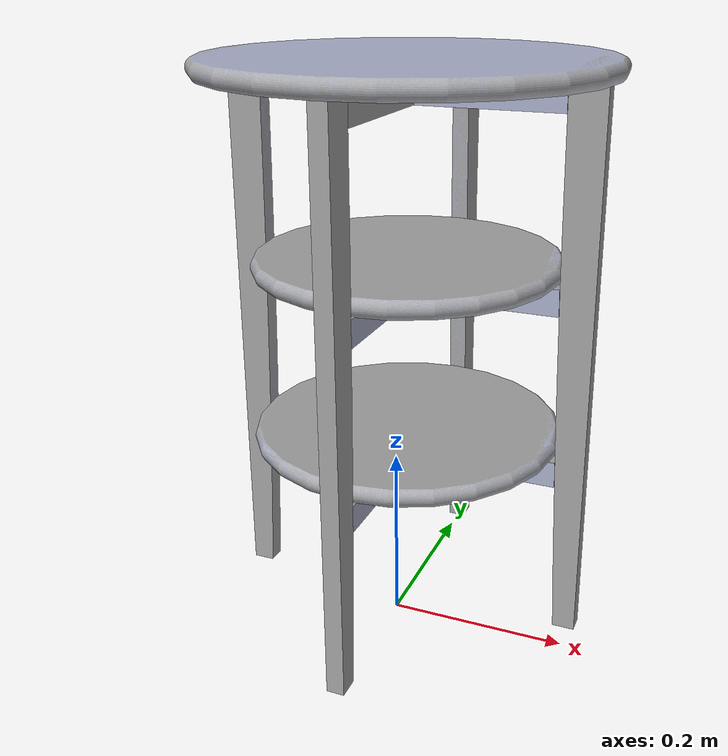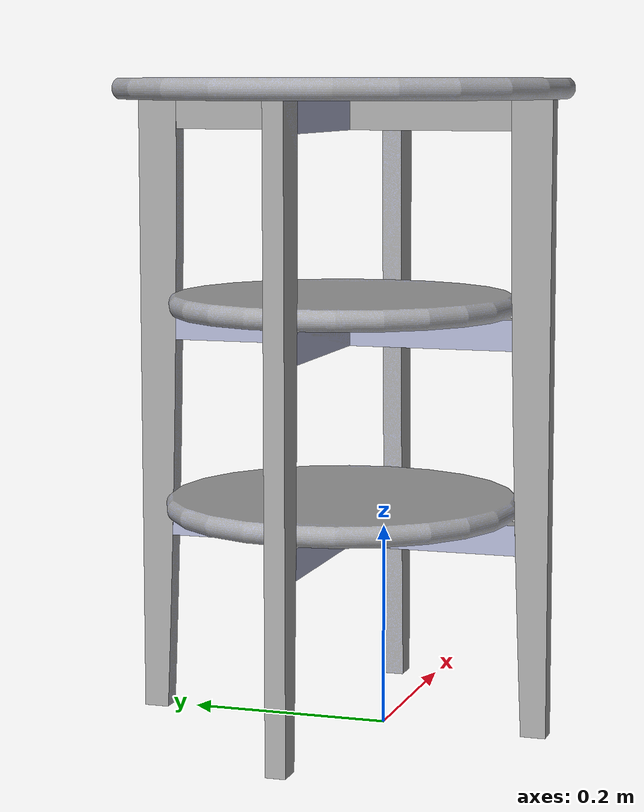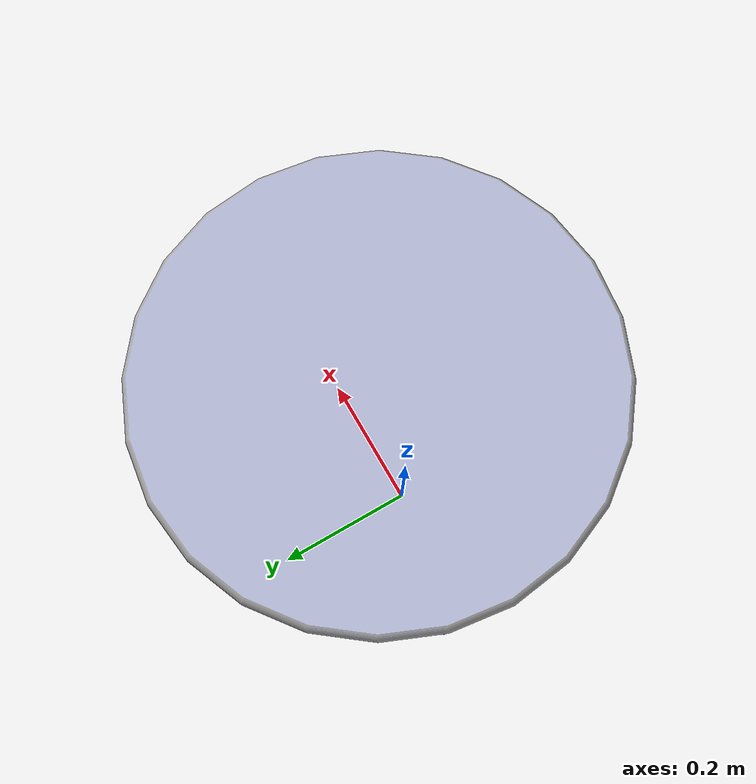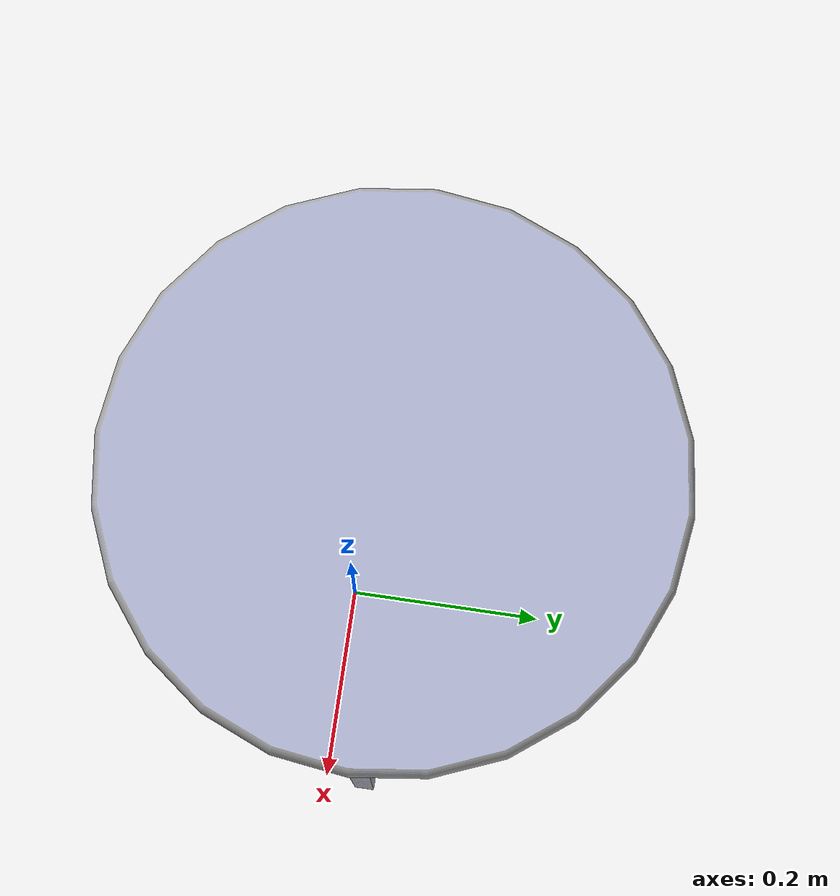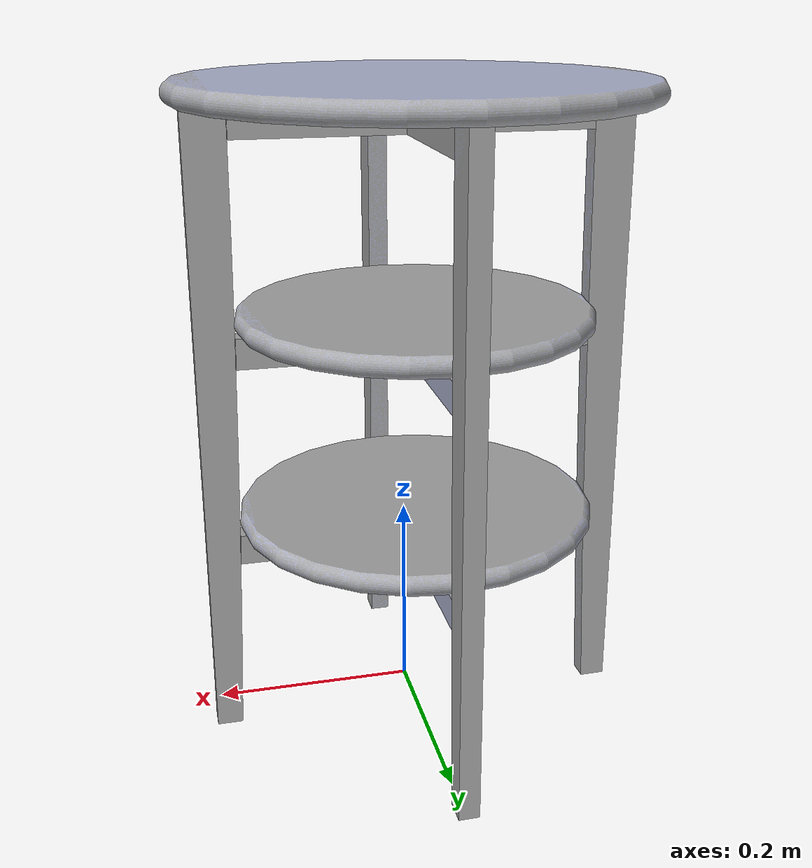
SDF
<?xml version='1.0'?>
<sdf version='1.6'>
  <model name='side_table_1'>
    <link name='link_1'>
      <pose frame=''>0.007786 -0.167928 0 0 -0 0</pose>
         <visual name='visual'>
        <pose frame=''>0 0 0 0 -0 0</pose>
        <geometry>
          <mesh>
            <uri>model://side_table_1/meshes/middle.dae</uri>
            <scale>1 1 1</scale>
          </mesh>
        </geometry>
         <material>
          <script>
            <uri>model://side_table_1/materials/scripts</uri>
            <uri>model://side_table_1/materials/textures</uri>
            <name>side_table_1</name>
          </script>
        </material>
        <cast_shadows>1</cast_shadows>
        <transparency>0</transparency>
      </visual>
      <collision name='collision'>
        <laser_retro>0</laser_retro>
        <max_contacts>10</max_contacts>
        <pose frame=''>0 0 0 0 -0 0</pose>
        <geometry>
          <mesh>
            <uri>model://side_table_1/meshes/middle.dae</uri>
            <scale>1 1 1</scale>
          </mesh>
        </geometry>
       </collision>
    </link>
    <link name='link_2'>
      <pose frame=''>0.007887 -0.167821 0 0 -0 0</pose>
        <visual name='visual'>
        <pose frame=''>0 0 0 0 -0 0</pose>
        <geometry>
          <mesh>
            <uri>model://side_table_1/meshes/leg.dae</uri>
            <scale>1 1 1</scale>
          </mesh>
        </geometry>
               <material>
          <script>
            <uri>model://side_table_1/materials/scripts</uri>
            <uri>model://side_table_1/materials/textures</uri>
            <name>side_table_1</name>
          </script>
        </material>
        <cast_shadows>1</cast_shadows>
        <transparency>0</transparency>
      </visual>
      <collision name='collision'>
        <laser_retro>0</laser_retro>
        <max_contacts>10</max_contacts>
        <pose frame=''>0 0 0 0 -0 0</pose>
        <geometry>
          <mesh>
            <uri>model://side_table_1/meshes/leg.dae</uri>
            <scale>1 1 1</scale>
          </mesh>
        </geometry>
         </collision>
    </link>
    <link name='link_2_clone'>
      <pose frame=''>0.208023 0.051865 0 0 -0 1.57</pose>
       <visual name='visual'>
        <pose frame=''>0 0 0 0 -0 0</pose>
        <geometry>
          <mesh>
            <uri>model://side_table_1/meshes/leg.dae</uri>
            <scale>1 1 1</scale>
          </mesh>
        </geometry>
               <material>
          <script>
            <uri>model://side_table_1/materials/scripts</uri>
            <uri>model://side_table_1/materials/textures</uri>
            <name>side_table_1</name>
          </script>
        </material>
        <cast_shadows>1</cast_shadows>
        <transparency>0</transparency>
      </visual>
      <collision name='collision'>
        <laser_retro>0</laser_retro>
        <max_contacts>10</max_contacts>
        <pose frame=''>0 0 0 0 -0 0</pose>
        <geometry>
          <mesh>
            <uri>model://side_table_1/meshes/leg.dae</uri>
            <scale>1 1 1</scale>
          </mesh>
        </geometry>
       </collision>
    </link>
    <link name='link_2_clone_0'>
      <pose frame=''>-0.212235 0.031759 0 0 0 -1.57</pose>
         <visual name='visual'>
        <pose frame=''>0 0 0 0 -0 0</pose>
        <geometry>
          <mesh>
            <uri>model://side_table_1/meshes/leg.dae</uri>
            <scale>1 1 1</scale>
          </mesh>
        </geometry>
               <material>
          <script>
            <uri>model://side_table_1/materials/scripts</uri>
            <uri>model://side_table_1/materials/textures</uri>
            <name>side_table_1</name>
          </script>
        </material>
        <cast_shadows>1</cast_shadows>
        <transparency>0</transparency>
      </visual>
      <collision name='collision'>
        <laser_retro>0</laser_retro>
        <max_contacts>10</max_contacts>
        <pose frame=''>0 0 0 0 -0 0</pose>
        <geometry>
          <mesh>
            <uri>model://side_table_1/meshes/leg.dae</uri>
            <scale>1 1 1</scale>
          </mesh>
        </geometry>
      </collision>
    </link>
    <link name='link_2_clone_clone'>
      <pose frame=''>-0.011459 0.252125 0 0 -0 3.14</pose>
        <visual name='visual'>
        <pose frame=''>0 0 0 0 -0 0</pose>
        <geometry>
          <mesh>
            <uri>model://side_table_1/meshes/leg.dae</uri>
            <scale>1 1 1</scale>
          </mesh>
        </geometry>
               <material>
          <script>
            <uri>model://side_table_1/materials/scripts</uri>
            <uri>model://side_table_1/materials/textures</uri>
            <name>side_table_1</name>
          </script>
        </material>
        <cast_shadows>1</cast_shadows>
        <transparency>0</transparency>
      </visual>
      <collision name='collision'>
        <laser_retro>0</laser_retro>
        <max_contacts>10</max_contacts>
        <pose frame=''>0 0 0 0 -0 0</pose>
        <geometry>
          <mesh>
            <uri>model://side_table_1/meshes/leg.dae</uri>
            <scale>1 1 1</scale>
          </mesh>
        </geometry>
       </collision>
    </link>
    <static>1</static>
    <allow_auto_disable>1</allow_auto_disable>
  </model>
</sdf>
